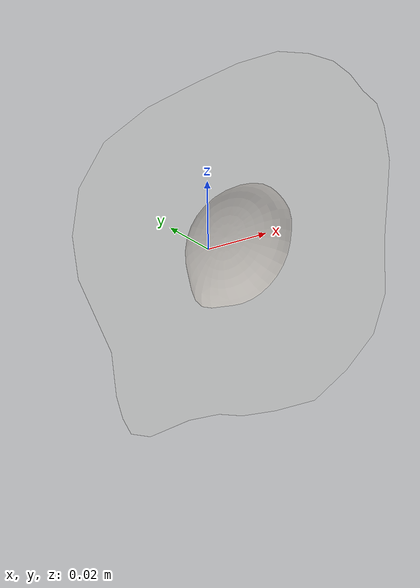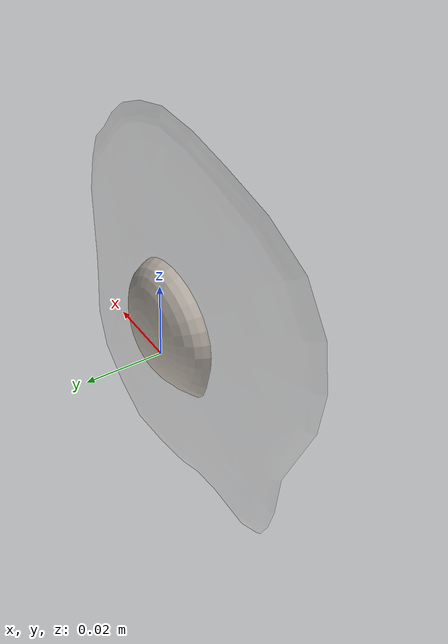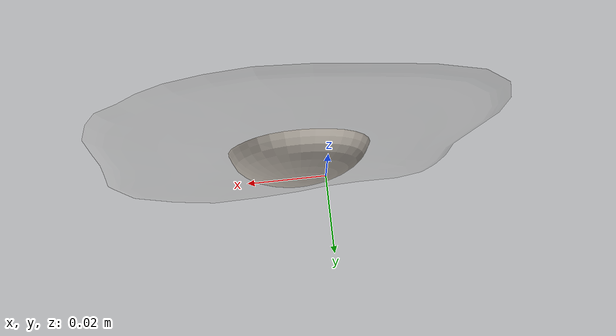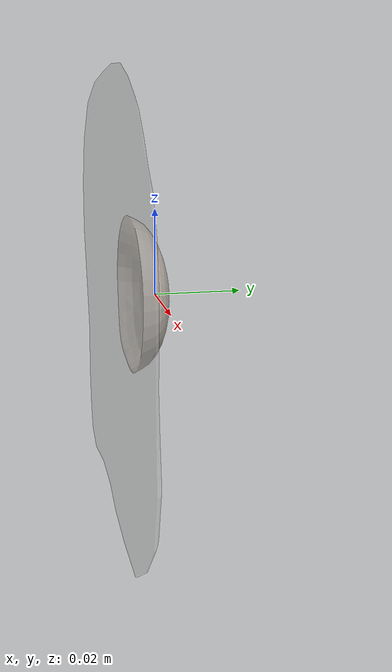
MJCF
<mujoco model="Egg_Cracked_25">
  <compiler autolimits="true" boundmass="0.01" angle="radian"/>
  <default>
    <default class="/">
      <default class="__VISUAL_MJT__">
        <geom contype="0" conaffinity="0" group="0"/>
      </default>
      <default class="__STRUCTURAL_MJT__">
        <geom contype="8" conaffinity="15" group="4" friction="0.90000000000000002 0.90000000000000002 0.001" solref="0.025000000000000001 1" solimp="0.998 0.998 0.001"/>
      </default>
      <default class="__DYNAMIC_MJT__">
        <geom contype="1" conaffinity="15" group="4" friction="0.90000000000000002 0.90000000000000002 0.001" solref="0.025000000000000001 1" solimp="0.998 0.998 0.001"/>
      </default>
    </default>
  </default>
  <asset>
    <texture name="Fried_Egg_White_Uncooked_Mat" type="2d" file="Fried_Egg_AlbedoTransparency.png"/>
    <material name="material_Fried_Egg_White_Uncooked_Mat" class="/" texture="Fried_Egg_White_Uncooked_Mat" specular="0.5" shininess="0.5" rgba="1 1 1 0.5"/>
    <texture name="Fried_Egg_Yolk_Mat" type="2d" file="Fried_Egg_AlbedoTransparency.png"/>
    <material name="material_Fried_Egg_Yolk_Mat" class="/" texture="Fried_Egg_Yolk_Mat" specular="0.5" shininess="0.5" rgba="1 1 1 1"/>
    <mesh name="Egg_Cracked_25_fried_egg_24_0" class="/" file="Egg_Cracked_25_fried_egg_24/Egg_Cracked_25_fried_egg_24_0.obj" scale="1 1 1"/>
    <mesh name="Egg_Cracked_25_fried_egg_24_1" class="/" file="Egg_Cracked_25_fried_egg_24/Egg_Cracked_25_fried_egg_24_1.obj" scale="1 1 1"/>
  </asset>
  <worldbody>
    <body name="Egg_Cracked_25">
      <joint name="Egg_Cracked_25_free" class="/" type="free" pos="0 0 0" axis="0 0 1" stiffness="0" range="0 0" armature="0" damping="0.10000000000000001" frictionloss="0"/>
      <body name="Egg_Cracked_25_fried_egg_24" pos="0.00364 -0.01023 0.00596" quat="1 0 0 0">
        <geom name="Egg_Cracked_25_fried_egg_24_0" class="__VISUAL_MJT__" type="mesh" material="material_Fried_Egg_White_Uncooked_Mat" shellinertia="false" mesh="Egg_Cracked_25_fried_egg_24_0"/>
        <geom name="Egg_Cracked_25_fried_egg_24_1" class="__VISUAL_MJT__" type="mesh" material="material_Fried_Egg_Yolk_Mat" shellinertia="false" mesh="Egg_Cracked_25_fried_egg_24_1"/>
        <geom name="Egg_Cracked_25_PrimitiveCollider_0" class="__DYNAMIC_MJT__" type="box" size="0.053228225558996201 0.010231256484985352 0.055884361267089844" rgba="0 1 0 1" pos="0.0036438368260860443 0.010231256484985352 -0.0059614181518554688" quat="1 0 0 0"/>
      </body>
    </body>
  </worldbody>
</mujoco>
